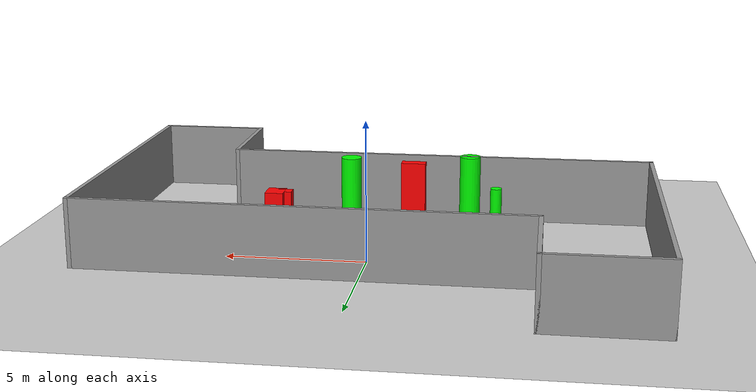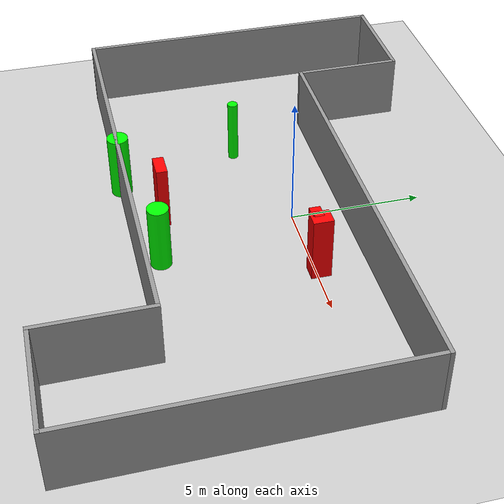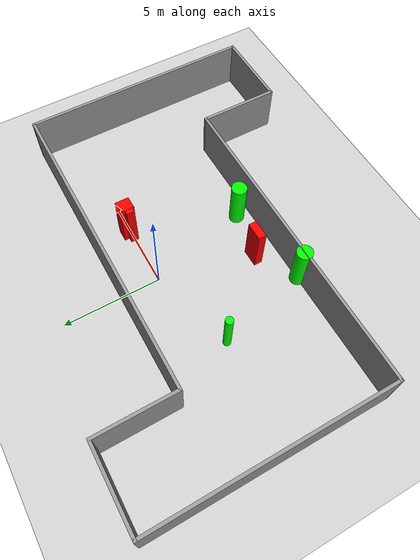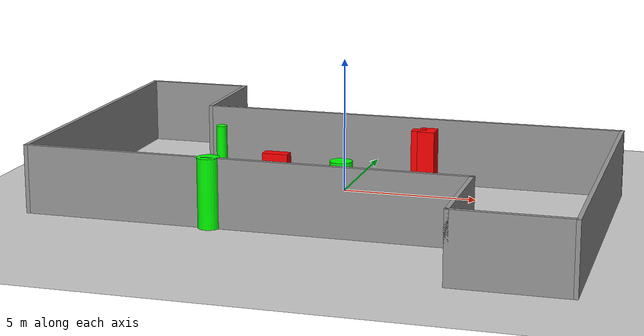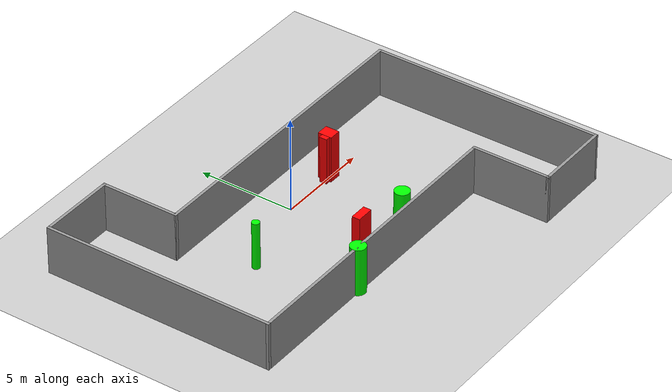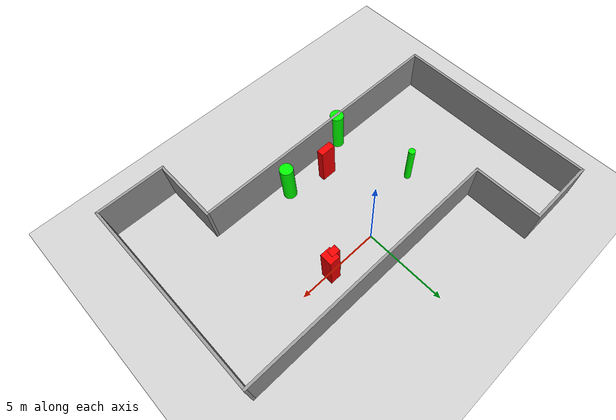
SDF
<sdf version="1.7">
 <world name="default">
  <light name="sun" type="directional">
   <pose>0 0 10 0 -0 0</pose>
   <diffuse>0.8 0.8 0.8 1</diffuse>
   <specular>0.2 0.2 0.2 1</specular>
   <attenuation>
    <range>1000</range>
    <constant>0.9</constant>
    <linear>0.01</linear>
    <quadratic>0.001</quadratic>
   </attenuation>
   <direction>-0.5 0.1 -0.9</direction>
   <spot><inner_angle>0</inner_angle><outer_angle>0</outer_angle><falloff>0</falloff></spot>
  </light>
  <model name="ground_plane">
   <static>1</static>
   <link name="link">
    <collision name="collision">
     <geometry><plane><normal>0 0 1</normal><size>100 100</size></plane></geometry>
     <surface>
      <contact><collide_bitmask>65535</collide_bitmask></contact>
      <friction><ode><mu>100</mu><mu2>50</mu2></ode></friction>
     </surface>
    </collision>
    <visual name="visual">
     <cast_shadows>0</cast_shadows>
     <geometry><plane><normal>0 0 1</normal><size>100 100</size></plane></geometry>
     <material>
      <script><uri>file://media/materials/scripts/gazebo.material</uri><name>Gazebo/Grey</name></script>
     </material>
    </visual>
   </link>
  </model>
  <gravity>0 0 -9.8</gravity>
  <magnetic_field>6e-06 2.3e-05 -4.2e-05</magnetic_field>
  <atmosphere type="adiabatic"/>
  <physics type="ode">
   <max_step_size>0.001</max_step_size>
   <real_time_factor>1</real_time_factor>
   <real_time_update_rate>1000</real_time_update_rate>
  </physics>
  <scene><ambient>0.4 0.4 0.4 1</ambient><background>0.7 0.7 0.7 1</background><shadows>1</shadows></scene>
  <spherical_coordinates>
   <surface_model>EARTH_WGS84</surface_model>
   <latitude_deg>0</latitude_deg>
   <longitude_deg>0</longitude_deg>
   <elevation>0</elevation>
   <heading_deg>0</heading_deg>
  </spherical_coordinates>
  <model name="my_base_walls">
   <link name="Wall_13">
    <collision name="Wall_13_Collision">
     <geometry><box><size>12.15 0.15 2.5</size></box></geometry>
     <pose>0 0 1.25 0 -0 0</pose>
    </collision>
    <visual name="Wall_13_Visual">
     <pose>0 0 1.25 0 -0 0</pose>
     <geometry><box><size>12.15 0.15 2.5</size></box></geometry>
     <material>
      <script><uri>file://media/materials/scripts/gazebo.material</uri><name>Gazebo/Grey</name></script>
      <ambient>1 1 1 1</ambient>
     </material>
     <meta><layer>0</layer></meta>
    </visual>
    <pose>10 -2 0 0 -0 1.5708</pose>
   </link>
   <link name="Wall_15">
    <collision name="Wall_15_Collision">
     <geometry><box><size>16.15 0.15 2.5</size></box></geometry>
     <pose>0 0 1.25 0 -0 0</pose>
    </collision>
    <visual name="Wall_15_Visual">
     <pose>0 0 1.25 0 -0 0</pose>
     <geometry><box><size>16.15 0.15 2.5</size></box></geometry>
     <material>
      <script><uri>file://media/materials/scripts/gazebo.material</uri><name>Gazebo/Grey</name></script>
      <ambient>1 1 1 1</ambient>
     </material>
     <meta><layer>0</layer></meta>
    </visual>
    <pose>2 4 0 0 -0 3.14159</pose>
   </link>
   <link name="Wall_17">
    <collision name="Wall_17_Collision">
     <geometry><box><size>4.15 0.15 2.5</size></box></geometry>
     <pose>0 0 1.25 0 -0 0</pose>
    </collision>
    <visual name="Wall_17_Visual">
     <pose>0 0 1.25 0 -0 0</pose>
     <geometry><box><size>4.15 0.15 2.5</size></box></geometry>
     <material>
      <script><uri>file://media/materials/scripts/gazebo.material</uri><name>Gazebo/Grey</name></script>
      <ambient>1 1 1 1</ambient>
     </material>
     <meta><layer>0</layer></meta>
    </visual>
    <pose>6 -6 0 0 -0 -1.5708</pose>
   </link>
   <link name="Wall_19">
    <collision name="Wall_19_Collision">
     <geometry><box><size>12.15 0.15 2.5</size></box></geometry>
     <pose>0 0 1.25 0 -0 0</pose>
    </collision>
    <visual name="Wall_19_Visual">
     <pose>0 0 1.25 0 -0 0</pose>
     <geometry><box><size>12.15 0.15 2.5</size></box></geometry>
     <material>
      <script><uri>file://media/materials/scripts/gazebo.material</uri><name>Gazebo/Grey</name></script>
      <ambient>1 1 1 1</ambient>
     </material>
     <meta><layer>0</layer></meta>
    </visual>
    <pose>-10 2 0 0 -0 1.5708</pose>
   </link>
   <link name="Wall_21">
    <collision name="Wall_21_Collision">
     <geometry><box><size>4.15 0.15 2.5</size></box></geometry>
     <pose>0 0 1.25 0 -0 0</pose>
    </collision>
    <visual name="Wall_21_Visual">
     <pose>0 0 1.25 0 -0 0</pose>
     <geometry><box><size>4.15 0.15 2.5</size></box></geometry>
     <material>
      <script><uri>file://media/materials/scripts/gazebo.material</uri><name>Gazebo/Grey</name></script>
      <ambient>1 1 1 1</ambient>
     </material>
     <meta><layer>0</layer></meta>
    </visual>
    <pose>-8 8 0 0 -0 0</pose>
   </link>
   <link name="Wall_23">
    <collision name="Wall_23_Collision">
     <geometry><box><size>4.15 0.15 2.5</size></box></geometry>
     <pose>0 0 1.25 0 -0 0</pose>
    </collision>
    <visual name="Wall_23_Visual">
     <pose>0 0 1.25 0 -0 0</pose>
     <geometry><box><size>4.15 0.15 2.5</size></box></geometry>
     <material>
      <script><uri>file://media/materials/scripts/gazebo.material</uri><name>Gazebo/Grey</name></script>
      <ambient>1 1 1 1</ambient>
     </material>
     <meta><layer>0</layer></meta>
    </visual>
    <pose>-6 6 0 0 -0 -1.5708</pose>
   </link>
   <link name="Wall_25">
    <collision name="Wall_25_Collision">
     <geometry><box><size>4.15 0.15 2.5</size></box></geometry>
     <pose>0 0 1.25 0 -0 0</pose>
    </collision>
    <visual name="Wall_25_Visual">
     <pose>0 0 1.25 0 -0 0</pose>
     <geometry><box><size>4.15 0.15 2.5</size></box></geometry>
     <material>
      <script><uri>file://media/materials/scripts/gazebo.material</uri><name>Gazebo/Grey</name></script>
      <ambient>1 1 1 1</ambient>
     </material>
     <meta><layer>0</layer></meta>
    </visual>
    <pose>8 -8 0 0 -0 0</pose>
   </link>
   <link name="Wall_9">
    <collision name="Wall_9_Collision">
     <geometry><box><size>16.15 0.15 2.5</size></box></geometry>
     <pose>0 0 1.25 0 -0 0</pose>
    </collision>
    <visual name="Wall_9_Visual">
     <pose>0 0 1.25 0 -0 0</pose>
     <geometry><box><size>16.15 0.15 2.5</size></box></geometry>
     <material>
      <script><uri>file://media/materials/scripts/gazebo.material</uri><name>Gazebo/Grey</name></script>
      <ambient>1 1 1 1</ambient>
     </material>
     <meta><layer>0</layer></meta>
    </visual>
    <pose>-2 -4 0 0 -0 3.14159</pose>
   </link>
   <static>1</static>
   <pose>-0 -2 0 0 -0 0</pose>
  </model>
  <model name="cylinder1">
   <static>1</static>
   <link name="link">
    <inertial>
     <mass>1</mass>
     <inertia><ixx>0.5</ixx><ixy>0</ixy><ixz>0</ixz><iyy>0.5</iyy><iyz>0</iyz><izz>1</izz></inertia>
    </inertial>
    <collision name="collision">
     <geometry><cylinder><radius>0.19812524319359956</radius><length>2.5</length></cylinder></geometry>
    </collision>
    <visual name="visual">
     <geometry><cylinder><radius>0.19812524319359956</radius><length>2.5</length></cylinder></geometry>
     <material>
      <ambient>0 1 0 1</ambient>
      <diffuse>0 1 0 1</diffuse>
      <specular>0.1 0.1 0.1 1</specular>
      <emissive>0 0 0 0</emissive>
     </material>
    </visual>
   </link>
   <pose>-4.39240525250948 -1.2506875233003871 1.25 0 0 0</pose>
  </model>
  <model name="cylinder2">
   <static>1</static>
   <link name="link">
    <inertial>
     <mass>1</mass>
     <inertia><ixx>0.5</ixx><ixy>0</ixy><ixz>0</ixz><iyy>0.5</iyy><iyz>0</iyz><izz>1</izz></inertia>
    </inertial>
    <collision name="collision">
     <geometry><cylinder><radius>0.38787496527955734</radius><length>2.5</length></cylinder></geometry>
    </collision>
    <visual name="visual">
     <geometry><cylinder><radius>0.38787496527955734</radius><length>2.5</length></cylinder></geometry>
     <material>
      <ambient>0 1 0 1</ambient>
      <diffuse>0 1 0 1</diffuse>
      <specular>0.1 0.1 0.1 1</specular>
      <emissive>0 0 0 0</emissive>
     </material>
    </visual>
   </link>
   <pose>1.3327723641190614 -5.214794344879664 1.25 0 0 0</pose>
  </model>
  <model name="cylinder3">
   <static>1</static>
   <link name="link">
    <inertial>
     <mass>1</mass>
     <inertia><ixx>0.5</ixx><ixy>0</ixy><ixz>0</ixz><iyy>0.5</iyy><iyz>0</iyz><izz>1</izz></inertia>
    </inertial>
    <collision name="collision">
     <geometry><cylinder><radius>0.3987821942326132</radius><length>2.5</length></cylinder></geometry>
    </collision>
    <visual name="visual">
     <geometry><cylinder><radius>0.3987821942326132</radius><length>2.5</length></cylinder></geometry>
     <material>
      <ambient>0 1 0 1</ambient>
      <diffuse>0 1 0 1</diffuse>
      <specular>0.1 0.1 0.1 1</specular>
      <emissive>0 0 0 0</emissive>
     </material>
    </visual>
   </link>
   <pose>-3.1835509808846596 -5.959235076301088 1.25 0 0 0</pose>
  </model>
  <model name="box1">
   <static>1</static>
   <link name="link">
    <inertial>
     <mass>1</mass>
     <inertia><ixx>0.083</ixx><ixy>0</ixy><ixz>0</ixz><iyy>0.083</iyy><iyz>0</iyz><izz>0.083</izz></inertia>
    </inertial>
    <collision name="collision">
     <geometry><box><size>0.909811140890485 0.4126064091397217 2.5</size></box></geometry>
    </collision>
    <visual name="visual">
     <geometry><box><size>0.909811140890485 0.4126064091397217 2.5</size></box></geometry>
     <material>
      <ambient>1 0 0 1</ambient>
      <diffuse>1 0 0 1</diffuse>
      <specular>0.1 0.1 0.1 1</specular>
      <emissive>0 0 0 0</emissive>
     </material>
    </visual>
    <sensor name="my_contact" type="contact">
     <contact><collision>box_collision</collision><topic>__default_topic__</topic></contact>
    </sensor>
   </link>
   <pose>-1.1280781560962243 -4.706612235918288 1.25 0 0 0</pose>
  </model>
  <model name="box2">
   <static>1</static>
   <link name="link">
    <inertial>
     <mass>1</mass>
     <inertia><ixx>0.083</ixx><ixy>0</ixy><ixz>0</ixz><iyy>0.083</iyy><iyz>0</iyz><izz>0.083</izz></inertia>
    </inertial>
    <collision name="collision">
     <geometry><box><size>0.6295412879895511 0.7288919085050978 2.5</size></box></geometry>
    </collision>
    <visual name="visual">
     <geometry><box><size>0.6295412879895511 0.7288919085050978 2.5</size></box></geometry>
     <material>
      <ambient>1 0 0 1</ambient>
      <diffuse>1 0 0 1</diffuse>
      <specular>0.1 0.1 0.1 1</specular>
      <emissive>0 0 0 0</emissive>
     </material>
    </visual>
    <sensor name="my_contact" type="contact">
     <contact><collision>box_collision</collision><topic>__default_topic__</topic></contact>
    </sensor>
   </link>
   <pose>3.1398229685817114 0.10559588431273603 1.25 0 0 0</pose>
  </model>
  <model name="box3">
   <static>1</static>
   <link name="link">
    <inertial>
     <mass>1</mass>
     <inertia><ixx>0.083</ixx><ixy>0</ixy><ixz>0</ixz><iyy>0.083</iyy><iyz>0</iyz><izz>0.083</izz></inertia>
    </inertial>
    <collision name="collision">
     <geometry><box><size>0.5219987989192263 0.40437330891046797 2.5</size></box></geometry>
    </collision>
    <visual name="visual">
     <geometry><box><size>0.5219987989192263 0.40437330891046797 2.5</size></box></geometry>
     <material>
      <ambient>1 0 0 1</ambient>
      <diffuse>1 0 0 1</diffuse>
      <specular>0.1 0.1 0.1 1</specular>
      <emissive>0 0 0 0</emissive>
     </material>
    </visual>
    <sensor name="my_contact" type="contact">
     <contact><collision>box_collision</collision><topic>__default_topic__</topic></contact>
    </sensor>
   </link>
   <pose>2.8378761358002986 0.025297989995885395 1.25 0 0 0</pose>
  </model>
 </world>
</sdf>
